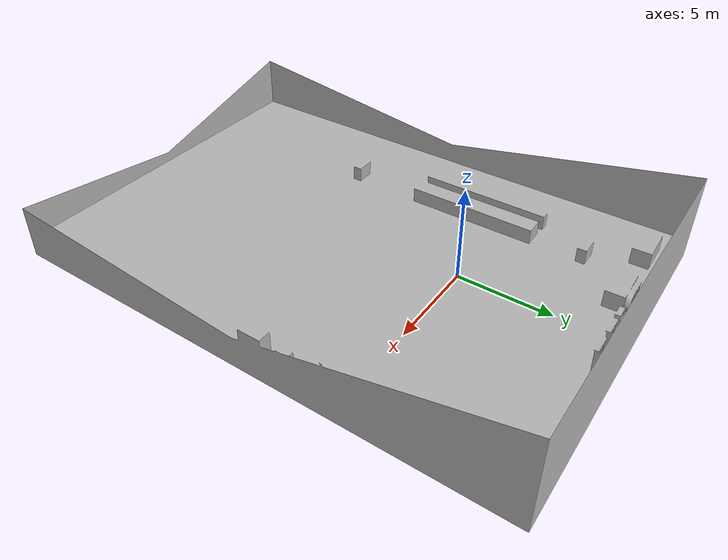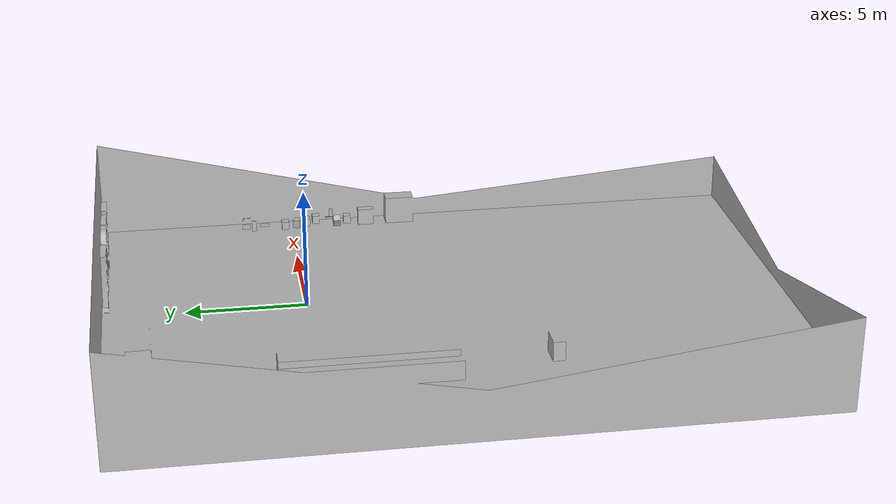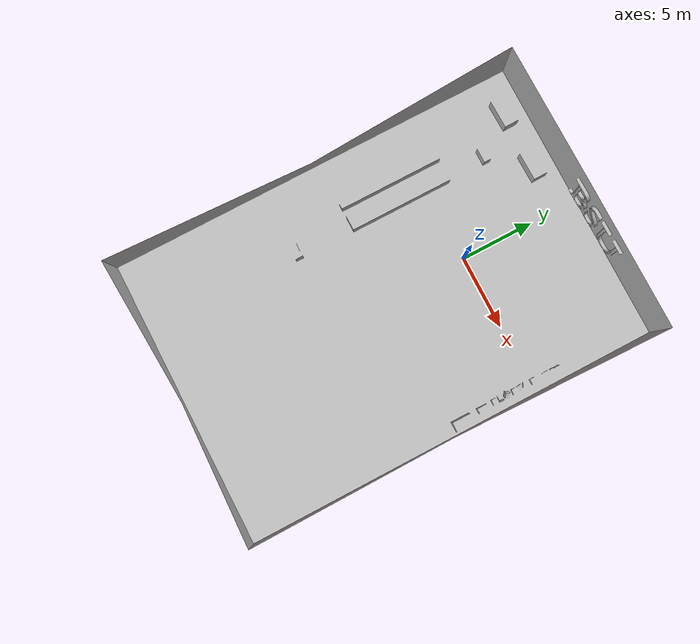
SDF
<?xml version="1.0" ?>
<sdf version="1.8">
  <world name="empty_world">
    <!--
    Plugins are a dynamically loaded chunk of code.
    -->
    <plugin
      filename="gz-sim-physics-system"
      name="gz::sim::systems::Physics">
    </plugin>

    <plugin
      filename="gz-sim-user-commands-system"
      name="gz::sim::systems::UserCommands">
    </plugin>

    <plugin
      filename="gz-sim-scene-broadcaster-system"
      name="gz::sim::systems::SceneBroadcaster">
    </plugin>

    <plugin
      filename="gz-sim-sensors-system"
      name="gz::sim::systems::Sensors">
    </plugin>

    <plugin
      filename="gz-sim-contact-system"
      name="gz::sim::systems::Contact">
    </plugin>

    <scene>
      <shadows>0</shadows>
      <grid>false</grid>
      <origin_visual>false</origin_visual>
    </scene>

    <light type="directional" name="sun">
      <cast_shadows>false</cast_shadows>
      <pose>0 0 10 0 0 0</pose>
      <diffuse>0.8 0.8 0.8 1</diffuse>
      <specular>0.2 0.2 0.2 1</specular>
      <attenuation>
        <range>1000</range>
        <constant>0.9</constant>
        <linear>0.01</linear>
        <quadratic>0.001</quadratic>
      </attenuation>
      <direction>-0.5 0.1 -0.9</direction>
    </light>

    <model name="training_ground_mesh">
      <static>true</static>
      <link name="training_ground_body">
        <collision name='training_ground_collision'>
          <geometry>
            <mesh>
              <uri>model://training_ground.obj</uri>
              <scale>0.5 0.5 0.5</scale>
            </mesh>
          </geometry>
          <surface>
            <friction>
              <ode/>
            </friction>
            <bounce/>
            <contact/>
          </surface>
        </collision>
        <visual name="training_ground_visual">
          <geometry>
            <mesh>
              <uri>model://training_ground.obj</uri>
              <scale>0.5 0.5 0.5</scale>
            </mesh>
          </geometry>
        </visual>
      </link>
      <pose>0 0 0 1.57 0 0</pose>
    </model>

  </world>
</sdf>
